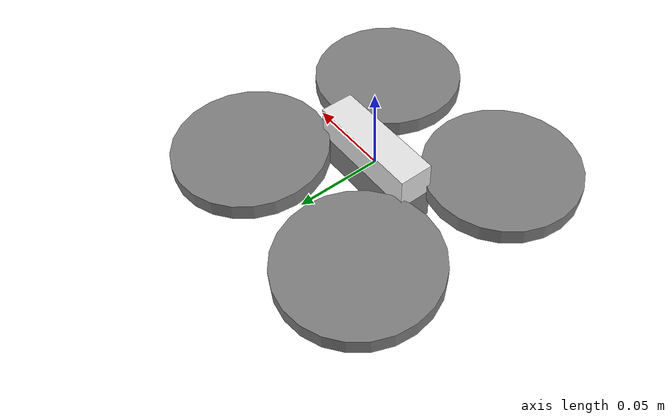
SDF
<?xml version="1.0" ?>
<sdf version="1.9">
  <model name="tello">
    <link name="base_link">
      <inertial>
        <mass>0.1</mass>
        <inertia>
          <ixx>0.000290833</ixx>
          <ixy>0</ixy>
          <ixz>0</ixz>
          <iyy>0.00054</iyy>
          <iyz>0</iyz>
          <izz>0.000290833</izz>
        </inertia>
      </inertial>

      <collision name="collision">
        <geometry>
          <box>
            <size>0.18 0.18 0.05</size>
          </box>
        </geometry>
      </collision>

      <!-- Visuals from URDF -->
      <visual name="body_white">
        <pose>0 0 0.01 0 0 0</pose>
        <geometry><box><size>0.07 0.02 0.02</size></box></geometry>
        <material><ambient>0.9 0.9 0.9 1</ambient><diffuse>0.9 0.9 0.9 1</diffuse></material>
      </visual>
      <visual name="body_gray">
        <pose>0 0 -0.01 0 0 0</pose>
        <geometry><box><size>0.07 0.02 0.02</size></box></geometry>
        <material><ambient>0.5 0.5 0.5 1</ambient><diffuse>0.5 0.5 0.5 1</diffuse></material>
      </visual>
      <visual name="prop_front_left">
        <pose>0.05 0.05 0 0 0 0</pose>
        <geometry><cylinder><radius>0.045</radius><length>0.01</length></cylinder></geometry>
        <material><ambient>0.5 0.5 0.5 1</ambient><diffuse>0.5 0.5 0.5 1</diffuse></material>
      </visual>
      <visual name="prop_front_right">
        <pose>0.05 -0.05 0 0 0 0</pose>
        <geometry><cylinder><radius>0.045</radius><length>0.01</length></cylinder></geometry>
        <material><ambient>0.5 0.5 0.5 1</ambient><diffuse>0.5 0.5 0.5 1</diffuse></material>
      </visual>
      <visual name="prop_back_left">
        <pose>-0.05 0.05 0 0 0 0</pose>
        <geometry><cylinder><radius>0.045</radius><length>0.01</length></cylinder></geometry>
        <material><ambient>0.5 0.5 0.5 1</ambient><diffuse>0.5 0.5 0.5 1</diffuse></material>
      </visual>
      <visual name="prop_back_right">
        <pose>-0.05 -0.05 0 0 0 0</pose>
        <geometry><cylinder><radius>0.045</radius><length>0.01</length></cylinder></geometry>
        <material><ambient>0.5 0.5 0.5 1</ambient><diffuse>0.5 0.5 0.5 1</diffuse></material>
      </visual>

      <!-- Camera Sensor (frontal original) -->
      <sensor name="camera" type="camera">
        <pose>0.035 0 0 0 0 0</pose>
        <always_on>1</always_on>
        <update_rate>30</update_rate>
        <visualize>true</visualize>
        <topic>drone1/camera</topic>
        <camera>
          <horizontal_fov>0.96</horizontal_fov>
          <image>
            <width>960</width>
            <height>720</height>
            <format>R8G8B8</format>
          </image>
          <clip>
            <near>0.1</near>
            <far>300</far>
          </clip>
        </camera>
      </sensor>

    </link>

    <link name="espejo_link">
      <pose>0 0 0 0 0 0</pose>
      <inertial>
        <mass>1e-6</mass>
        <inertia>
          <ixx>1e-6</ixx><iyy>1e-6</iyy><izz>1e-6</izz>
          <ixy>0</ixy><ixz>0</ixz><iyz>0</iyz>
        </inertia>
      </inertial>

      <sensor name="camera_down" type="camera">
        <pose>0.1 0 -0.05 0 1.570796 0</pose>
        <always_on>1</always_on>
        <update_rate>30</update_rate>
        <visualize>true</visualize>
        <topic>drone1/camera_down</topic>
        <camera name="camera_down">
          <horizontal_fov>0.940651</horizontal_fov>
          <image>
            <width>960</width>
            <height>720</height>
            <format>R8G8B8</format>
          </image>
          <clip>
            <near>0.1</near>
            <far>10.0</far>
          </clip>
          <noise>
            <type>gaussian</type>
            <mean>0.0</mean>
            <stddev>0.002250</stddev>
          </noise>
          <lens>
            <type>stereographic</type>
            <scale_to_hfov>true</scale_to_hfov>
          </lens>
        </camera>
      </sensor>
    </link>

    <!-- Joint fijo que acopla espejo_link a base_link (masa despreciable) -->
    <joint name="espejo_joint" type="fixed">
      <parent>base_link</parent>
      <child>espejo_link</child>
    </joint>

    <!-- Plugins -->
    <plugin
      filename="TelloPlugin"
      name="tello_gazebo::TelloPlugin">
      <namespace>drone1</namespace>
      <link_name>base_link</link_name>
      <center_of_mass>0 0 0</center_of_mass>
    </plugin>
  </model>
</sdf>
